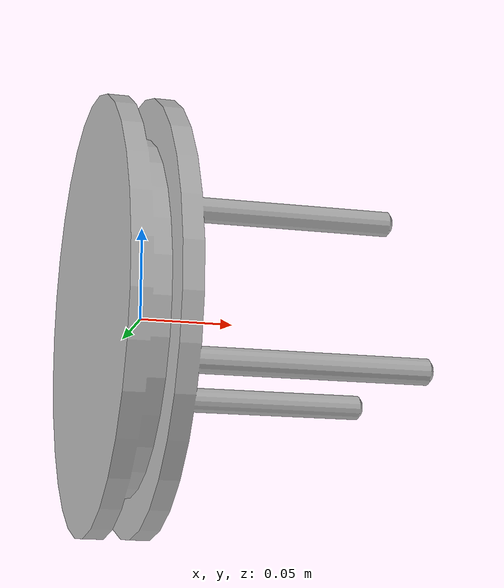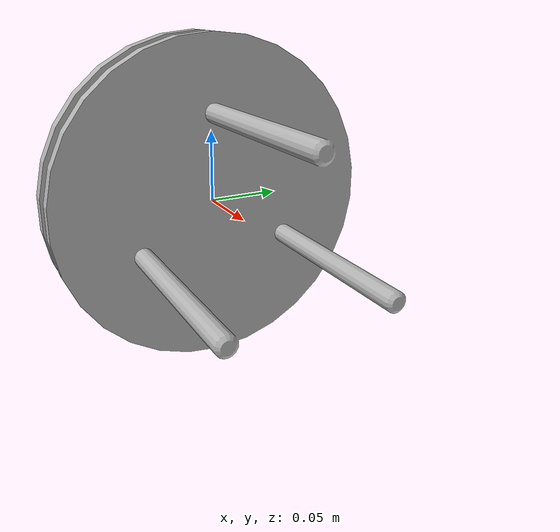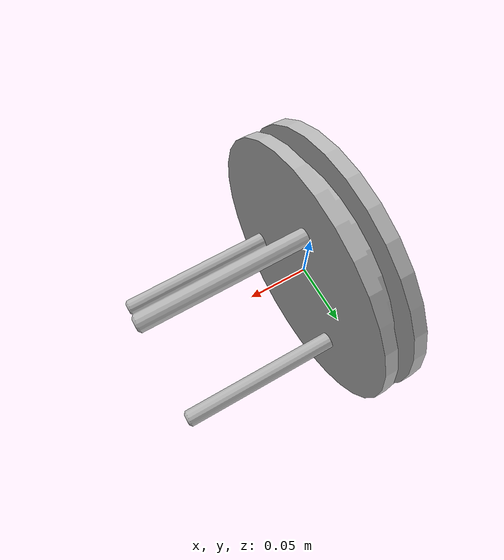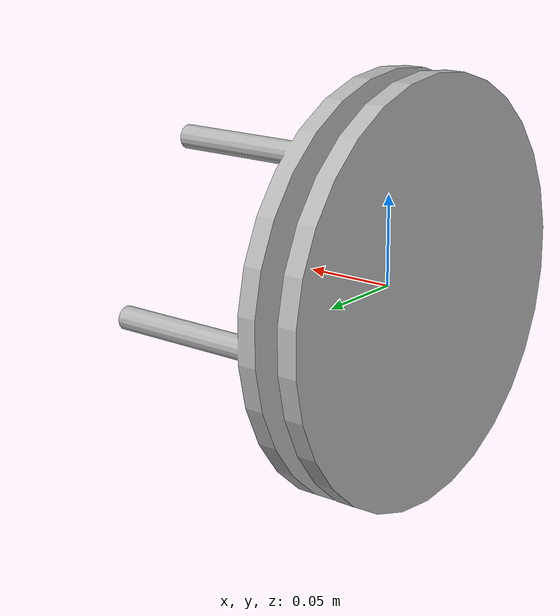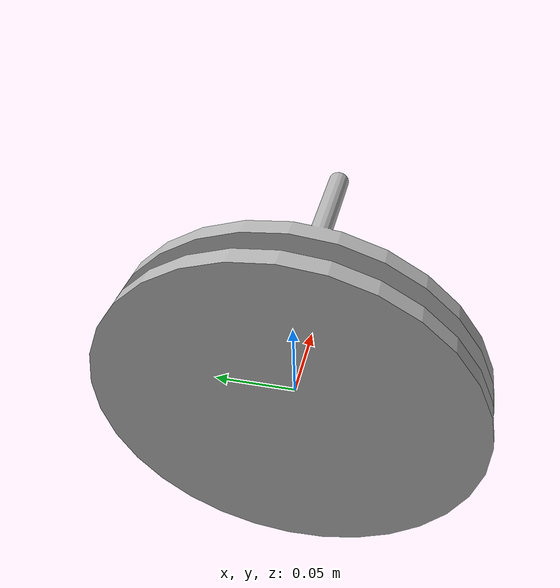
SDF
<?xml version='1.0'?>
<sdf version="1.3">

  <model name="Wheel_Rotor">
    <pose> -0.01 0.0 0.0  0.0 0.0 0.0 </pose>
    <static>true</static>

    <link name="rotor">

      <visual name="visual">
        <geometry>
          <mesh>
            <uri>model://Wheel_Rotor/meshes/wheel_rotor.dae</uri>
            <scale>1.0 1.0 1.0</scale>
          </mesh>
        </geometry>
        <material>
          <emissive> 1 1 1 1 </emissive>
        </material>
      </visual>

      <collision name="collision">
        <geometry>
          <mesh>
            <uri>model://Wheel_Rotor/meshes/wheel_rotor.dae</uri>
            <scale>1.0 1.0 1.0</scale>
          </mesh>
        </geometry>
	    <surface>
          <bounce>
            <restitution_coefficient> 0 </restitution_coefficient>
            <threshold> 0 </threshold>
          </bounce>
          <contact>
            <ode>
              <max_vel>0</max_vel>
            </ode>
          </contact>
        </surface>
      </collision>

    </link>
  </model>

</sdf>
